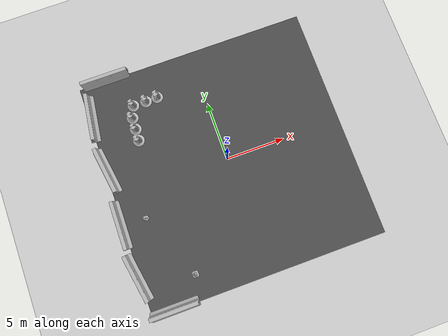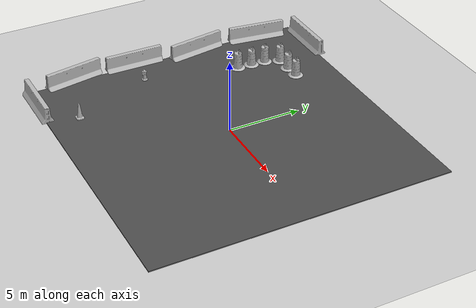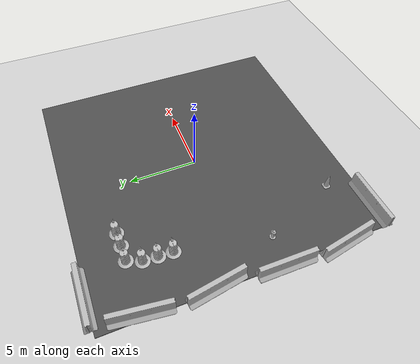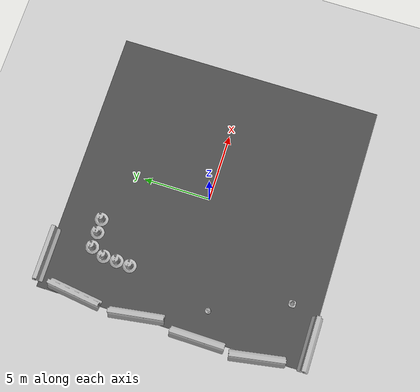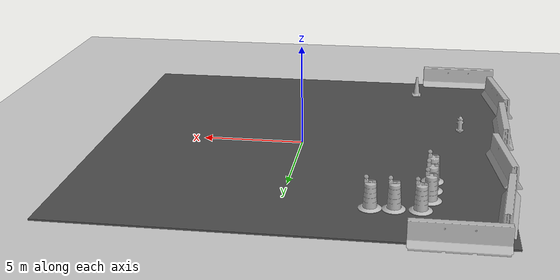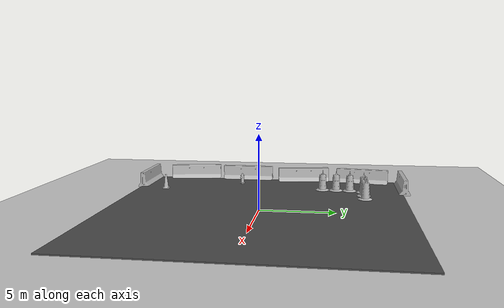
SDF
<sdf version="1.6">
 <world name="default">
  <model name="ground_plane">
   <static>1</static>
   <link name="link">
    <collision name="collision">
     <geometry><plane><normal>0 0 1</normal><size>100 100</size></plane></geometry>
     <surface><friction><ode><mu>100</mu><mu2>50</mu2></ode></friction></surface>
    </collision>
    <visual name="visual">
     <cast_shadows>0</cast_shadows>
     <geometry><plane><normal>0 0 1</normal><size>100 100</size></plane></geometry>
     <material>
      <script><uri>file://media/materials/scripts/gazebo.material</uri><name>Gazebo/Grey</name></script>
     </material>
    </visual>
    <velocity_decay><linear>0</linear><angular>0</angular></velocity_decay>
   </link>
  </model>
  <model name="jersey_barrier">
   <static>1</static>
   <link name="link">
    <visual name="visual">
     <geometry><mesh><uri>model://jersey_barrier/meshes/jersey_barrier.dae</uri></mesh></geometry>
    </visual>
    <collision name="upright">
     <pose>0 0 0.5715 0 -0 0</pose>
     <geometry><box><size>4.06542 0.3063 1.143</size></box></geometry>
    </collision>
    <collision name="base">
     <pose>0 0 0.032258 0 -0 0</pose>
     <geometry><box><size>4.06542 0.8107 0.064516</size></box></geometry>
    </collision>
    <collision name="base2">
     <pose>0 0 0.1 0 -0 0</pose>
     <geometry><box><size>4.06542 0.65 0.1</size></box></geometry>
    </collision>
    <collision name="base3">
     <pose>0 0 0.2 0 -0 0</pose>
     <geometry><box><size>4.06542 0.5 0.1</size></box></geometry>
    </collision>
    <collision name="left-angle">
     <pose>0 -0.224 0.2401 0.9 -0 0</pose>
     <geometry><box><size>4.06542 0.5 0.064516</size></box></geometry>
    </collision>
    <collision name="right-angle">
     <pose>0 0.224 0.2401 -0.9 0 0</pose>
     <geometry><box><size>4.06542 0.5 0.064516</size></box></geometry>
    </collision>
    <velocity_decay><linear>0</linear><angular>0</angular></velocity_decay>
   </link>
   <pose>-8 -10 0 0 -0 0</pose>
  </model>
  <model name="jersey_barrier_3">
   <static>1</static>
   <link name="link">
    <visual name="visual">
     <geometry><mesh><uri>model://jersey_barrier/meshes/jersey_barrier.dae</uri></mesh></geometry>
    </visual>
    <collision name="upright">
     <pose>0 0 0.5715 0 -0 0</pose>
     <geometry><box><size>4.06542 0.3063 1.143</size></box></geometry>
    </collision>
    <collision name="base">
     <pose>0 0 0.032258 0 -0 0</pose>
     <geometry><box><size>4.06542 0.8107 0.064516</size></box></geometry>
    </collision>
    <collision name="base2">
     <pose>0 0 0.1 0 -0 0</pose>
     <geometry><box><size>4.06542 0.65 0.1</size></box></geometry>
    </collision>
    <collision name="base3">
     <pose>0 0 0.2 0 -0 0</pose>
     <geometry><box><size>4.06542 0.5 0.1</size></box></geometry>
    </collision>
    <collision name="left-angle">
     <pose>0 -0.224 0.2401 0.9 -0 0</pose>
     <geometry><box><size>4.06542 0.5 0.064516</size></box></geometry>
    </collision>
    <collision name="right-angle">
     <pose>0 0.224 0.2401 -0.9 0 0</pose>
     <geometry><box><size>4.06542 0.5 0.064516</size></box></geometry>
    </collision>
    <velocity_decay><linear>0</linear><angular>0</angular></velocity_decay>
   </link>
   <pose>-7.50675 10 0 0 -0 0</pose>
  </model>
  <model name="jersey_barrier_9">
   <static>1</static>
   <link name="link">
    <visual name="visual">
     <geometry><mesh><uri>model://jersey_barrier/meshes/jersey_barrier.dae</uri></mesh></geometry>
    </visual>
    <collision name="upright">
     <pose>0 0 0.5715 0 -0 0</pose>
     <geometry><box><size>4.06542 0.3063 1.143</size></box></geometry>
    </collision>
    <collision name="base">
     <pose>0 0 0.032258 0 -0 0</pose>
     <geometry><box><size>4.06542 0.8107 0.064516</size></box></geometry>
    </collision>
    <collision name="base2">
     <pose>0 0 0.1 0 -0 0</pose>
     <geometry><box><size>4.06542 0.65 0.1</size></box></geometry>
    </collision>
    <collision name="base3">
     <pose>0 0 0.2 0 -0 0</pose>
     <geometry><box><size>4.06542 0.5 0.1</size></box></geometry>
    </collision>
    <collision name="left-angle">
     <pose>0 -0.224 0.2401 0.9 -0 0</pose>
     <geometry><box><size>4.06542 0.5 0.064516</size></box></geometry>
    </collision>
    <collision name="right-angle">
     <pose>0 0.224 0.2401 -0.9 0 0</pose>
     <geometry><box><size>4.06542 0.5 0.064516</size></box></geometry>
    </collision>
    <velocity_decay><linear>0</linear><angular>0</angular></velocity_decay>
   </link>
   <pose>-10.0607 -6.69856 0 0 0 -1.4</pose>
  </model>
  <model name="jersey_barrier_10">
   <static>1</static>
   <link name="link">
    <visual name="visual">
     <geometry><mesh><uri>model://jersey_barrier/meshes/jersey_barrier.dae</uri></mesh></geometry>
    </visual>
    <collision name="upright">
     <pose>0 0 0.5715 0 -0 0</pose>
     <geometry><box><size>4.06542 0.3063 1.143</size></box></geometry>
    </collision>
    <collision name="base">
     <pose>0 0 0.032258 0 -0 0</pose>
     <geometry><box><size>4.06542 0.8107 0.064516</size></box></geometry>
    </collision>
    <collision name="base2">
     <pose>0 0 0.1 0 -0 0</pose>
     <geometry><box><size>4.06542 0.65 0.1</size></box></geometry>
    </collision>
    <collision name="base3">
     <pose>0 0 0.2 0 -0 0</pose>
     <geometry><box><size>4.06542 0.5 0.1</size></box></geometry>
    </collision>
    <collision name="left-angle">
     <pose>0 -0.224 0.2401 0.9 -0 0</pose>
     <geometry><box><size>4.06542 0.5 0.064516</size></box></geometry>
    </collision>
    <collision name="right-angle">
     <pose>0 0.224 0.2401 -0.9 0 0</pose>
     <geometry><box><size>4.06542 0.5 0.064516</size></box></geometry>
    </collision>
    <velocity_decay><linear>0</linear><angular>0</angular></velocity_decay>
   </link>
   <pose>-10.0774 -2.27159 0 0 -0 1.56</pose>
  </model>
  <model name="jersey_barrier_11">
   <static>1</static>
   <link name="link">
    <visual name="visual">
     <geometry><mesh><uri>model://jersey_barrier/meshes/jersey_barrier.dae</uri></mesh></geometry>
    </visual>
    <collision name="upright">
     <pose>0 0 0.5715 0 -0 0</pose>
     <geometry><box><size>4.06542 0.3063 1.143</size></box></geometry>
    </collision>
    <collision name="base">
     <pose>0 0 0.032258 0 -0 0</pose>
     <geometry><box><size>4.06542 0.8107 0.064516</size></box></geometry>
    </collision>
    <collision name="base2">
     <pose>0 0 0.1 0 -0 0</pose>
     <geometry><box><size>4.06542 0.65 0.1</size></box></geometry>
    </collision>
    <collision name="base3">
     <pose>0 0 0.2 0 -0 0</pose>
     <geometry><box><size>4.06542 0.5 0.1</size></box></geometry>
    </collision>
    <collision name="left-angle">
     <pose>0 -0.224 0.2401 0.9 -0 0</pose>
     <geometry><box><size>4.06542 0.5 0.064516</size></box></geometry>
    </collision>
    <collision name="right-angle">
     <pose>0 0.224 0.2401 -0.9 0 0</pose>
     <geometry><box><size>4.06542 0.5 0.064516</size></box></geometry>
    </collision>
    <velocity_decay><linear>0</linear><angular>0</angular></velocity_decay>
   </link>
   <pose>-9.77013 2.34791 0 0 -0 1.72</pose>
  </model>
  <model name="jersey_barrier_14">
   <static>1</static>
   <link name="link">
    <visual name="visual">
     <geometry><mesh><uri>model://jersey_barrier/meshes/jersey_barrier.dae</uri></mesh></geometry>
    </visual>
    <collision name="upright">
     <pose>0 0 0.5715 0 -0 0</pose>
     <geometry><box><size>4.06542 0.3063 1.143</size></box></geometry>
    </collision>
    <collision name="base">
     <pose>0 0 0.032258 0 -0 0</pose>
     <geometry><box><size>4.06542 0.8107 0.064516</size></box></geometry>
    </collision>
    <collision name="base2">
     <pose>0 0 0.1 0 -0 0</pose>
     <geometry><box><size>4.06542 0.65 0.1</size></box></geometry>
    </collision>
    <collision name="base3">
     <pose>0 0 0.2 0 -0 0</pose>
     <geometry><box><size>4.06542 0.5 0.1</size></box></geometry>
    </collision>
    <collision name="left-angle">
     <pose>0 -0.224 0.2401 0.9 -0 0</pose>
     <geometry><box><size>4.06542 0.5 0.064516</size></box></geometry>
    </collision>
    <collision name="right-angle">
     <pose>0 0.224 0.2401 -0.9 0 0</pose>
     <geometry><box><size>4.06542 0.5 0.064516</size></box></geometry>
    </collision>
    <velocity_decay><linear>0</linear><angular>0</angular></velocity_decay>
   </link>
   <pose>-9.64482 7.05946 0 0 -0 1.44</pose>
  </model>
  <model name="fire_hydrant_1">
   <static>1</static>
   <link name="link">
    <collision name="collision">
     <geometry><mesh><uri>model://fire_hydrant/meshes/fire_hydrant.dae</uri></mesh></geometry>
    </collision>
    <visual name="visual">
     <geometry><mesh><uri>model://fire_hydrant/meshes/fire_hydrant.dae</uri></mesh></geometry>
    </visual>
    <velocity_decay><linear>0</linear><angular>0</angular></velocity_decay>
   </link>
   <pose>-7.90686 -2.41363 0 0 -0 0</pose>
  </model>
  <model name="Construction Cone">
   <link name="link">
    <collision name="collision">
     <geometry>
      <mesh><scale>10 10 10</scale><uri>model://construction_cone/meshes/construction_cone.dae</uri></mesh>
     </geometry>
    </collision>
    <visual name="visual">
     <geometry>
      <mesh><scale>10 10 10</scale><uri>model://construction_cone/meshes/construction_cone.dae</uri></mesh>
     </geometry>
    </visual>
    <velocity_decay><linear>0</linear><angular>0</angular></velocity_decay>
    <inertial>
     <inertia><ixx>1</ixx><ixy>0</ixy><ixz>0</ixz><iyy>1</iyy><iyz>0</iyz><izz>1</izz></inertia>
     <mass>1</mass>
    </inertial>
   </link>
   <pose>-5.59121 -8 0.050003 1.3e-05 1e-06 1e-06</pose>
   <static>0</static>
  </model>
  <model name="asphalt_plane">
   <static>1</static>
   <link name="link">
    <collision name="collision"><geometry><box><size>20 20 0.1</size></box></geometry></collision>
    <visual name="visual">
     <cast_shadows>0</cast_shadows>
     <geometry><box><size>20 20 0.1</size></box></geometry>
     <material>
      <script>
       <uri>model://asphalt_plane/materials/scripts</uri>
       <uri>model://asphalt_plane/materials/textures</uri>
       <name>vrc/asphalt</name>
      </script>
     </material>
    </visual>
    <velocity_decay><linear>0</linear><angular>0</angular></velocity_decay>
   </link>
   <pose>0.076733 -0.110379 0 0 -0 0</pose>
  </model>
  <model name="Construction Barrel_1">
   <link name="link">
    <inertial>
     <pose>0 0 0.4 0 -0 0</pose>
     <mass>500</mass>
     <inertia><ixx>51.2096</ixx><iyy>51.2096</iyy><izz>25</izz><ixy>0</ixy><ixz>0</ixz><iyz>0</iyz></inertia>
    </inertial>
    <collision name="collision">
     <geometry><mesh><uri>model://construction_barrel/meshes/construction_barrel.dae</uri></mesh></geometry>
    </collision>
    <visual name="visual">
     <geometry><mesh><uri>model://construction_barrel/meshes/construction_barrel.dae</uri></mesh></geometry>
    </visual>
    <velocity_decay><linear>0</linear><angular>0</angular></velocity_decay>
   </link>
   <pose>-6.50474 3.9827 0.049907 0.000391 8.4e-05 -0.009579</pose>
   <static>0</static>
  </model>
  <model name="Construction Barrel_2">
   <link name="link">
    <inertial>
     <pose>0 0 0.4 0 -0 0</pose>
     <mass>500</mass>
     <inertia><ixx>51.2096</ixx><iyy>51.2096</iyy><izz>25</izz><ixy>0</ixy><ixz>0</ixz><iyz>0</iyz></inertia>
    </inertial>
    <collision name="collision">
     <geometry><mesh><uri>model://construction_barrel/meshes/construction_barrel.dae</uri></mesh></geometry>
    </collision>
    <visual name="visual">
     <geometry><mesh><uri>model://construction_barrel/meshes/construction_barrel.dae</uri></mesh></geometry>
    </visual>
    <velocity_decay><linear>0</linear><angular>0</angular></velocity_decay>
   </link>
   <pose>-6.45063 4.99643 0.04989 -0.000217 -0.000399 0.064939</pose>
   <static>0</static>
  </model>
  <model name="Construction Barrel_3">
   <link name="link">
    <inertial>
     <pose>0 0 0.4 0 -0 0</pose>
     <mass>500</mass>
     <inertia><ixx>51.2096</ixx><iyy>51.2096</iyy><izz>25</izz><ixy>0</ixy><ixz>0</ixz><iyz>0</iyz></inertia>
    </inertial>
    <collision name="collision">
     <geometry><mesh><uri>model://construction_barrel/meshes/construction_barrel.dae</uri></mesh></geometry>
    </collision>
    <visual name="visual">
     <geometry><mesh><uri>model://construction_barrel/meshes/construction_barrel.dae</uri></mesh></geometry>
    </visual>
    <velocity_decay><linear>0</linear><angular>0</angular></velocity_decay>
   </link>
   <pose>-6.4017 6.01117 0.049863 -0.000144 -0.000499 -0.120734</pose>
   <static>0</static>
  </model>
  <model name="Construction Barrel_4">
   <link name="link">
    <inertial>
     <pose>0 0 0.4 0 -0 0</pose>
     <mass>500</mass>
     <inertia><ixx>51.2096</ixx><iyy>51.2096</iyy><izz>25</izz><ixy>0</ixy><ixz>0</ixz><iyz>0</iyz></inertia>
    </inertial>
    <collision name="collision">
     <geometry><mesh><uri>model://construction_barrel/meshes/construction_barrel.dae</uri></mesh></geometry>
    </collision>
    <visual name="visual">
     <geometry><mesh><uri>model://construction_barrel/meshes/construction_barrel.dae</uri></mesh></geometry>
    </visual>
    <velocity_decay><linear>0</linear><angular>0</angular></velocity_decay>
   </link>
   <pose>-6.00626 7.00889 0.04988 0.000443 0.000123 -0.049547</pose>
   <static>0</static>
  </model>
  <model name="Construction Barrel_5">
   <link name="link">
    <inertial>
     <pose>0 0 0.4 0 -0 0</pose>
     <mass>500</mass>
     <inertia><ixx>51.2096</ixx><iyy>51.2096</iyy><izz>25</izz><ixy>0</ixy><ixz>0</ixz><iyz>0</iyz></inertia>
    </inertial>
    <collision name="collision">
     <geometry><mesh><uri>model://construction_barrel/meshes/construction_barrel.dae</uri></mesh></geometry>
    </collision>
    <visual name="visual">
     <geometry><mesh><uri>model://construction_barrel/meshes/construction_barrel.dae</uri></mesh></geometry>
    </visual>
    <velocity_decay><linear>0</linear><angular>0</angular></velocity_decay>
   </link>
   <pose>-4.87564 7.00819 0.049903 0.000401 9.1e-05 0.146146</pose>
   <static>0</static>
  </model>
  <model name="Construction Barrel_6">
   <link name="link">
    <inertial>
     <pose>0 0 0.4 0 -0 0</pose>
     <mass>500</mass>
     <inertia><ixx>51.2096</ixx><iyy>51.2096</iyy><izz>25</izz><ixy>0</ixy><ixz>0</ixz><iyz>0</iyz></inertia>
    </inertial>
    <collision name="collision">
     <geometry><mesh><uri>model://construction_barrel/meshes/construction_barrel.dae</uri></mesh></geometry>
    </collision>
    <visual name="visual">
     <geometry><mesh><uri>model://construction_barrel/meshes/construction_barrel.dae</uri></mesh></geometry>
    </visual>
    <velocity_decay><linear>0</linear><angular>0</angular></velocity_decay>
   </link>
   <pose>-3.86067 7.04857 0.049907 -8.5e-05 -0.000389 0.031507</pose>
   <static>0</static>
  </model>
 </world>
</sdf>
